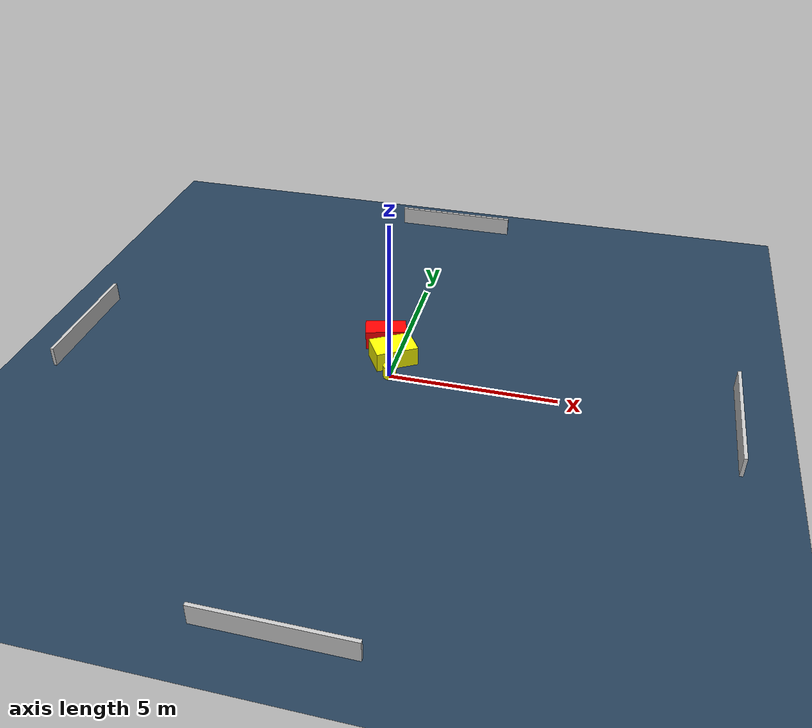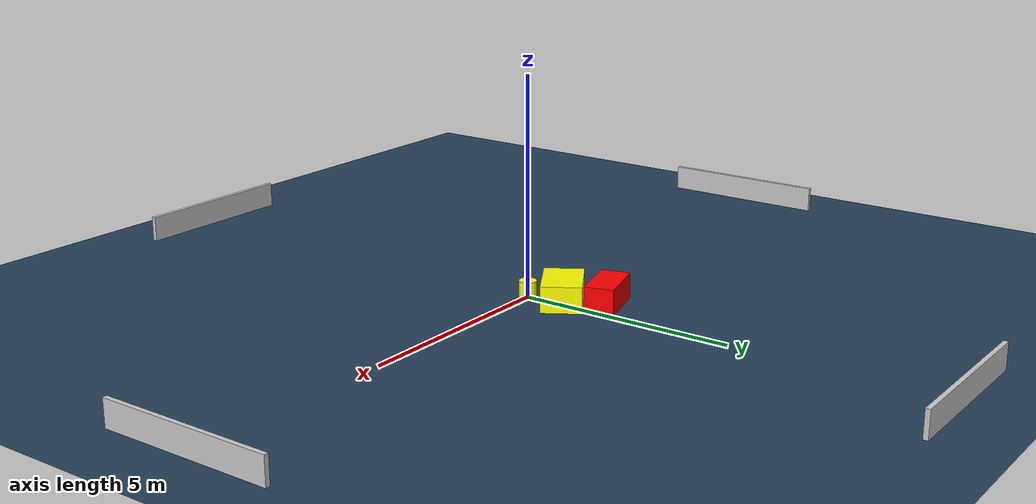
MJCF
<?xml version="1.0" ?>
<mujoco model="generated_environment">
  <option timestep="0.01" integrator="RK4" cone="elliptic"/>
  <default>
    <geom density="1"/>
  </default>
  <asset>
    <texture builtin="gradient" height="3072" name="skybox" rgb1="0.3 0.5 0.7" rgb2="0 0 0" type="skybox" width="512"/>
    <texture builtin="checker" height="300" name="groundplane" rgb1="0.2 0.3 0.4" rgb2="0.1 0.2 0.3" type="2d" width="300"/>
    <material name="groundplane" reflectance="0.2" texrepeat="5 5" texture="groundplane"/>
  </asset>
  <worldbody>
    <light dir="0 0 -1" directional="true" pos="0 0 1.5"/>
    <geom condim="3" friction="0.5 0.005 0.001" material="groundplane" name="floor" pos="0 0 0" size="0 0 0.05" type="plane"/>
    <body name="walls">
      <geom name="wall_1" condim="4" pos="-10.0 0.0 0.3" rgba="0.800000011920929 0.800000011920929 0.800000011920929 1.0" size="0.05 2.0 0.3" type="box"/>
      <geom name="wall_2" condim="4" pos="10.0 0.0 0.3" rgba="0.800000011920929 0.800000011920929 0.800000011920929 1.0" size="0.05 2.0 0.3" type="box"/>
      <geom name="wall_3" condim="4" pos="0.0 -10.0 0.3" rgba="0.800000011920929 0.800000011920929 0.800000011920929 1.0" size="2.0 0.05 0.3" type="box"/>
      <geom name="wall_4" condim="4" pos="0.0 10.0 0.3" rgba="0.800000011920929 0.800000011920929 0.800000011920929 1.0" size="2.0 0.05 0.3" type="box"/>
    </body>
    <body name="robot">
      <joint name="joint_x" type="slide" pos="0 0 0" axis="1 0 0"/>
      <joint name="joint_y" type="slide" pos="0 0 0" axis="0 1 0"/>
      <geom name="robot" type="cylinder" pos="0.0 0.0 0.2" size="0.2 0.2 0.0" mass="5.0" friction="1.0 0.005 0.0001" condim="4" rgba="1.0 1.0 0.0 1.0"/>
    </body>
    <body name="obstacle_1_movable">
      <geom name="obstacle_1_movable" condim="4" pos="-0.11273961558680644 0.8587371706394246 0.3" euler="0 0 121.45521771579486" friction="0.0 0.005 0.001" rgba="1.0 1.0 0.0 1.0" size="0.4539395797566862 0.6515212324635515 0.3" type="box" mass="0.1"/>
      <joint type="free"/>
    </body>
    <body name="obstacle_2_static">
      <geom name="obstacle_2_static" condim="4" pos="-0.5670361203442497 1.7245394583719167 0.3" euler="0 0 195.39723135383852" friction="0.0 0.005 0.001" rgba="1.0 0.0 0.0 1.0" size="0.6316095840202243 0.3333628478917333 0.3" type="box"/>
    </body>
  </worldbody>
  <actuator>
    <motor name="actuator_x" joint="joint_x" gear="1" ctrlrange="-1 1"/>
    <motor name="actuator_y" joint="joint_y" gear="1" ctrlrange="-1 1"/>
  </actuator>
</mujoco>
